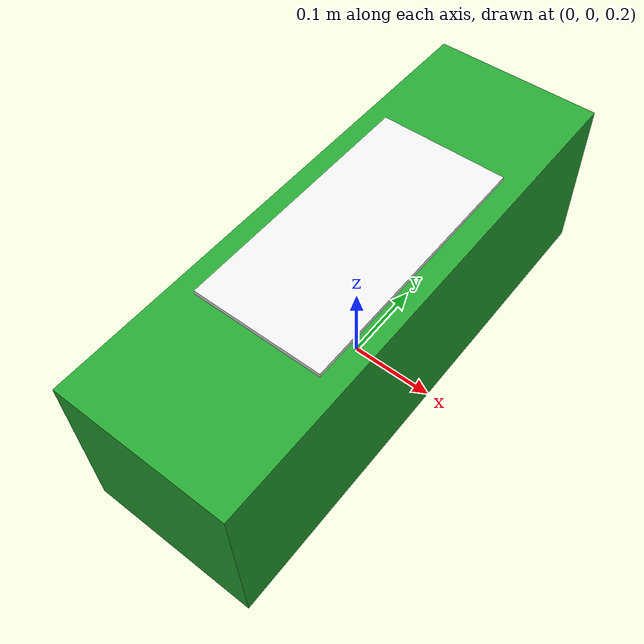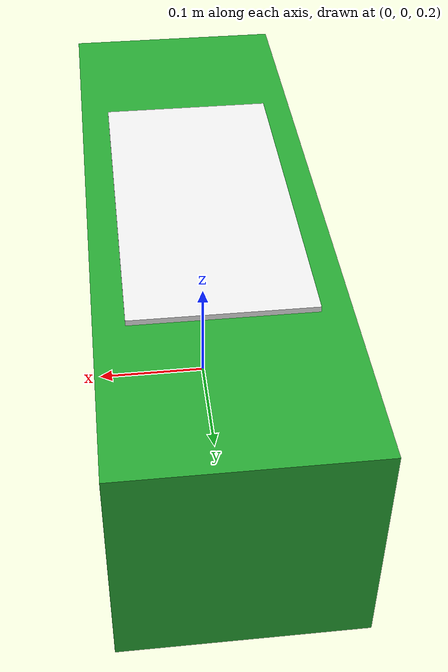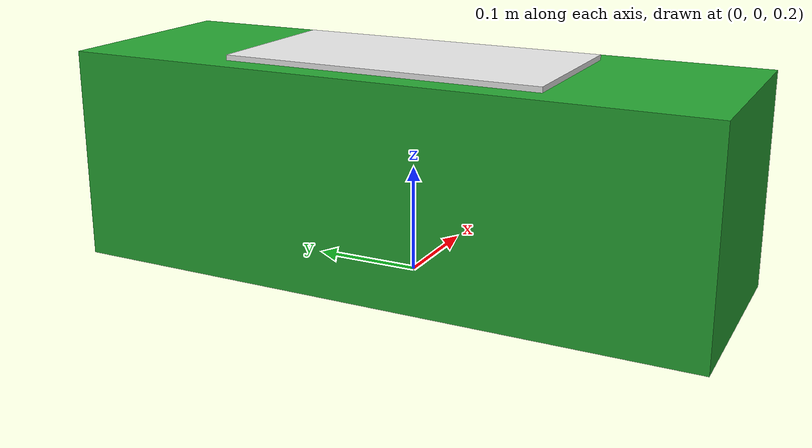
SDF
<?xml version="1.0" ?>
<sdf version="1.5">
  <model name="mbzirc_box_green">
    <pose>0 0 0.3 0 0 0</pose>
    <link name="link">
      <collision name="collision">
        <geometry>
          <box>
            <size>0.2 0.6 0.2</size>
          </box>
        </geometry>
      </collision>
      <visual name="visual">
        <geometry>
          <box>
            <size>0.2 0.6 0.2</size>
          </box>
        </geometry>
        <material>
          <script>
            <name>Gazebo/Green</name>
            <uri>file://media/materials/scripts/gazebo.material</uri>
          </script>
        </material>
      </visual>
      <collision name="collision_top">
        <pose>0 0 0.1 0 0 0</pose>
        <geometry>
          <box>
            <size>0.15 0.3 0.01</size>
          </box>
        </geometry>
      </collision>
      <visual name="visual_top">
        <pose>0 0 0.1 0 0 0</pose>
        <geometry>
          <box>
            <size>0.15 0.3 0.01</size>
          </box>
        </geometry>
        <material>
          <script>
            <name>Gazebo/White</name>
            <uri>file://media/materials/scripts/gazebo.material</uri>
          </script>
        </material>
      </visual>
    </link>
  </model>
</sdf>
